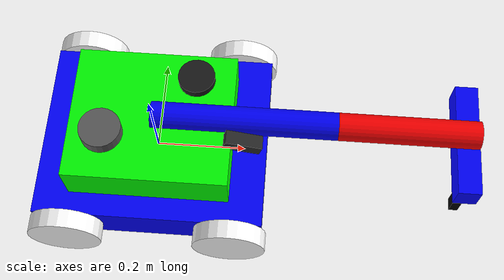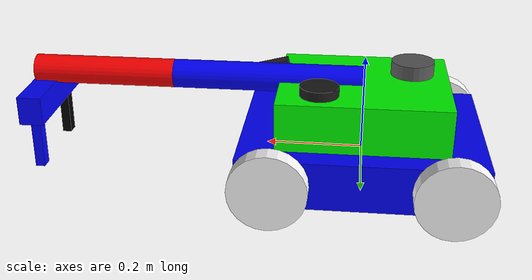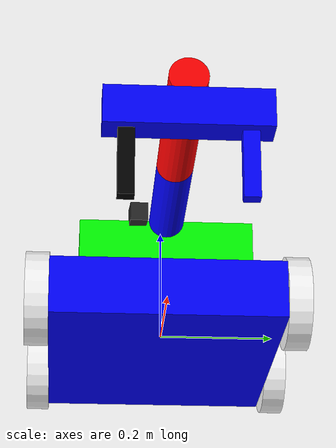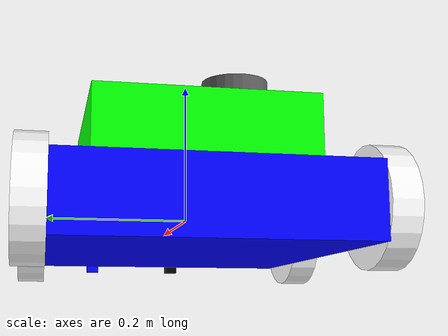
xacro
<?xml version="1.0"?>

<robot xmlns:xacro="http://www.ros.org/wiki/xacro" name="slam_robot">
  <xacro:property name="pi" value="3.14159265359"/>

  <!-- World -->

  <!-- Base -->

  <link name="base_link">

    <visual>
      <origin xyz="0 0 0" rpy="0 0 0"/>
      <geometry>
        <box size="0.5 0.4 0.1"/>
      </geometry>

      <material name="Dark Gray">
        <color rgba="0 0 1 1"/>
      </material>

    </visual>

    <collision>
      <origin xyz="0 0 0" rpy="0 0 0"/>
      <geometry>
        <box size="0.5 0.4 0.05"/>
      </geometry>
    </collision>

    <inertial>
      <origin xyz="0 0 0" rpy="0 0 0"/>
      <mass value="5"/>
      <inertia
        ixx="0.0708"
        ixy="0"
        ixz="0"
        iyy="0.1083"
        iyz="0"
        izz="0.1708"/>
    </inertial>
  </link>

  <!-- Right Front Wheel -->

  <joint name="right_front_wheel_joint" type="continuous">
    <origin xyz="0.18 -0.22 0" rpy="0 0 0"/>
    <parent link="base_link"/>
    <child link="right_front_wheel_link"/>
    <axis xyz="0 1 0"/>
  </joint>

  <link name="right_front_wheel_link">

    <visual>
      <origin xyz="0 0 0" rpy="${pi/2} 0 0"/>
      <geometry>
        <cylinder radius="0.08" length="0.04"/>
      </geometry>

      <material name="white">
        <color rgba="1 1 1 1"/>
      </material>

    </visual>

    <collision>
      <origin xyz="0 0 0" rpy="${pi/2} 0 0"/>
      <geometry>
        <cylinder radius="0.08" length="0.04"/>
      </geometry>
    </collision>

    <inertial>
      <origin xyz="0 0 0" rpy="0 0 0"/>
      <mass value="1"/>
      <inertia
        ixx="0.001733"
        ixy="0"
        ixz="0"
        iyy="0.001733"
        iyz="0"
        izz="0.0032"/>
    </inertial>

  </link>

  <!-- Left Front Wheel -->

  <joint name="left_front_wheel_joint" type="continuous">
    <origin xyz="0.18 0.22 0" rpy="0 0 0"/>
    <parent link="base_link"/>
    <child link="left_front_wheel_link"/>
    <axis xyz="0 1 0"/>
  </joint>

  <link name="left_front_wheel_link">

    <visual>
      <origin xyz="0 0 0" rpy="${pi/2} 0 0"/>
      <geometry>
        <cylinder radius="0.08" length="0.04"/>
      </geometry>

      <material name="white">
        <color rgba="1 1 1 1"/>
      </material>

    </visual>

    <collision>
      <origin xyz="0 0 0" rpy="${pi/2} 0 0"/>
      <geometry>
        <cylinder radius="0.08" length="0.04"/>
      </geometry>
    </collision>

    <inertial>
      <origin xyz="0 0 0" rpy="0 0 0"/>
      <mass value="1"/>
      <inertia
        ixx="0.001733"
        ixy="0"
        ixz="0"
        iyy="0.001733"
        iyz="0"
        izz="0.0032"/>
    </inertial>

  </link>

  <!-- Right Rear Wheel -->

  <joint name="right_back_wheel_joint" type="continuous">
    <origin xyz="-0.18 -0.22 0" rpy="0 0 0"/>
    <parent link="base_link"/>
    <child link="right_back_wheel_link"/>
    <axis xyz="0 1 0"/>
  </joint>

  <link name="right_back_wheel_link">

    <visual>
      <origin xyz="0 0 0" rpy="${pi/2} 0 0"/>
      <geometry>
        <cylinder radius="0.08" length="0.04"/>
      </geometry>

      <material name="white">
        <color rgba="1 1 1 1"/>
      </material>

    </visual>

    <collision>
      <origin xyz="0 0 0" rpy="${pi/2} 0 0"/>
      <geometry>
        <cylinder radius="0.08" length="0.04"/>
      </geometry>
    </collision>

    <inertial>
      <origin xyz="0 0 0" rpy="0 0 0"/>
      <mass value="1"/>
      <inertia
        ixx="0.001733"
        ixy="0"
        ixz="0"
        iyy="0.001733"
        iyz="0"
        izz="0.0032"/>
    </inertial>

  </link>

  <!-- Left Rear Wheel -->

  <joint name="left_back_wheel_joint" type="continuous">
    <origin xyz="-0.18 0.22 0" rpy="0 0 0"/>
    <parent link="base_link"/>
    <child link="left_back_wheel_link"/>
    <axis xyz="0 1 0"/>
  </joint>

  <link name="left_back_wheel_link">

    <visual>
      <origin xyz="0 0 0" rpy="${pi/2} 0 0"/>
      <geometry>
        <cylinder radius="0.08" length="0.04"/>
      </geometry>

      <material name="white">
        <color rgba="1 1 1 1"/>
      </material>

    </visual>

    <collision>
      <origin xyz="0 0 0" rpy="${pi/2} 0 0"/>
      <geometry>
        <cylinder radius="0.08" length="0.04"/>
      </geometry>
    </collision>

    <inertial>
      <origin xyz="0 0 0" rpy="0 0 0"/>
      <mass value="1"/>
      <inertia
        ixx="0.001733"
        ixy="0"
        ixz="0"
        iyy="0.001733"
        iyz="0"
        izz="0.0032"/>
    </inertial>

  </link>

  <!-- Sliding Joint -->
<joint name="sliding_joint" type="prismatic">
    <origin xyz="0 0 0.1" rpy="0 0 0"/>
    <parent link="base_link"/>
    <child link="sliding_link"/>

    <axis xyz="1 0 0"/>

    <limit
        lower="-0.20"
        upper="0.20"
        effort="100"
        velocity="0.2"/>
</joint>

<!-- Sliding Link -->
<link name="sliding_link">

    <visual>
        <origin xyz="0 0 0" rpy="0 0 0"/>
        <geometry>
            <box size="0.35 0.30 0.10"/>
        </geometry>

        <material name="green">
            <color rgba="0 1 0 1"/>
        </material>
    </visual>

    <collision>
        <origin xyz="0 0 0" rpy="0 0 0"/>
        <geometry>
            <box size="0.35 0.30 0.10"/>
        </geometry>
    </collision>

    <inertial>
        <origin xyz="0 0 0" rpy="0 0 0"/>
        <mass value="3"/>

        <inertia
            ixx="0.03125"
            ixy="0"
            ixz="0"
            iyy="0.03625"
            iyz="0"
            izz="0.06125"/>
    </inertial>

</link>
<joint name ="link1_joint" type ="revolute">
  <origin xyz = "0 0 0.05" rpy ="0 0 0"/>
  <parent link = "sliding_link"/>
  <child link = "link1"/>
  <axis xyz ="0 1 0"/>
  <limit lower="-1.57" upper = "0.008" effort = "100" velocity = "1"/>
</joint>
<!-- Link 1 -->
<link name="link1">

  <visual>
    <origin xyz="0.20 0 0" rpy="0 ${pi/2} 0"/>
    <geometry>
      <cylinder radius="0.03" length="0.40"/>
    </geometry>

    <material name="blue">
      <color rgba="0 0 1 1"/>
    </material>
  </visual>

  <collision>
    <origin xyz="0.20 0 0" rpy="0 ${pi/2} 0"/>
    <geometry>
      <cylinder radius="0.03" length="0.40"/>
    </geometry>
  </collision>

  <inertial>
    <origin xyz="0.20 0 0" rpy="0 0 0"/>
    <mass value="1"/>

    <inertia
      ixx="0.027"
      ixy="0"
      ixz="0"
      iyy="0.027"
      iyz="0"
      izz="0.0009"/>
  </inertial>

</link>

<!-- Revolute Joint 2 -->
<joint name="revolute2" type="revolute">

  <origin xyz="0.40 0 0" rpy="0 0 0"/>

  <parent link="link1"/>
  <child link="link2"/>

  <axis xyz="0 1 0"/>

  <limit
      lower="-0.059"
      upper="1.57"
      effort="100"
      velocity="1"/>

</joint>

<!-- Link 2 -->
<link name="link2">

  <visual>
    <origin xyz="0.15 0 0" rpy="0 ${pi/2} 0"/>
    <geometry>
      <cylinder radius="0.03" length="0.30"/>
    </geometry>

    <material name="Blue">
      <color rgba="1 0 0 1"/>
    </material>
  </visual>

  <collision>
    <origin xyz="0.15 0 0" rpy="0 ${pi/2} 0"/>
    <geometry>
      <cylinder radius="0.03" length="0.30"/>
    </geometry>
  </collision>

  <inertial>
    <origin xyz="0.15 0 0" rpy="0 0 0"/>
    <mass value="1"/>

    <inertia
      ixx="0.0115"
      ixy="0"
      ixz="0"
      iyy="0.0115"
      iyz="0"
      izz="0.000675"/>
  </inertial>

</link>
<!--wrist_joint_for_ee-->
<joint name = "wrist_joint" type = "revolute">
<origin xyz="0.28 0 0" rpy = "0 0 0"/>
<parent link ="link2"/>
<child link  = "wrist"/>
<axis xyz = "0 1 0"/>
<limit lower = "-1.57" upper="0.028" effort="100" velocity = "0.5"/>
</joint>
<!--vertical_link-->
<link name = "wrist">
   <visual>
      <origin xyz = "0 0 -0.05" rpy = "0 0 0 "/>
      <geometry>
        <box size = "0.05  0.25  0.06"/>
      </geometry>
      <material name ="black">
        <color rgba = "0 0 1 1"/>
      </material>
    </visual>
    <collision>
      <origin xyz = " 0 0 -0.05" rpy = "0 0 0"/>
      <geometry>
          <box size = "0.06  0.10  0.06"/>
      </geometry>
    </collision>
    <inertial>
      <origin xyz ="0 0 -0.05" rpy =" 0 0 0 "/>
      <mass value = "1"/>
      <inertia
        ixx="0.000454"
        ixy="0"
        ixz="0"
        iyy="0.000454"
        iyz="0"
        izz="0.000075"/>
    </inertial>
</link>
<!--finger joint-->
<joint name = "left_finger_joint" type = "prismatic">
<origin xyz="0 0.09 -0.05" rpy="0 0 0"/>
<parent link= "wrist"/>
<child link = "left_finger"/>
<axis xyz = "0 1 0"/>
<limit lower="0" upper="0.030" effort="100" velocity="1"/>
</joint>
<link name = "left_finger">
  <visual>
    <origin xyz="0 0 -0.06" rpy="0 0 0"/>
    <geometry>
      <box size = "0.020 0.025 0.15"/>
    </geometry>
    <material name="black">
      <color rgba = "0 0 1 1"/>
    </material>
  </visual>
  <collision>
    <origin xyz="0 0 -0.045" rpy="0 0 0"/>
    <geometry>
      <box size = "0.020 0.025 0.15"/>
    </geometry>
  </collision>
  <inertial>
     <origin xyz="0 0 -0.045" rpy="0 0 0"/>
     <mass value ="0.2"/>
     <inertia
        ixx="0.0001104"
        ixy="0"
        ixz="0"
        iyy="0.0001104"
        iyz="0"
        izz="0.0000075"/>
  </inertial>
</link>
<joint name = "right_finger_joint" type ="prismatic">
<origin xyz="0 -0.09 -0.05" rpy="0 0 0"/>
<parent link = "wrist"/>
<child link ="right_link"/>
<axis xyz="0 -1 0"/>
<limit lower="0" upper="0.030" effort="50" velocity="1"/>
</joint>
<link name="right_link">

    <visual>
        <origin xyz="0 0 -0.06" rpy="0 0 0"/>
        <geometry>
            <box size="0.020 0.025 0.15"/>
        </geometry>

        <material name="black">
            <color rgba="0 0 0 1"/>
        </material>
    </visual>

    <collision>
        <origin xyz="0 0 -0.06" rpy="0 0 0"/>
        <geometry>
            <box size="0.020 0.025 0.15"/>
        </geometry>
    </collision>

    <inertial>
        <origin xyz="0 0 -0.06" rpy="0 0 0"/>

        <mass value="0.2"/>

        <inertia
            ixx="0.0001104"
            ixy="0"
            ixz="0"
            iyy="0.0001104"
            iyz="0"
            izz="0.0000075"/>
    </inertial>
</link>
<!--lidar_joint-->
<joint name="lidar_joint" type="fixed">
    <parent link="sliding_link"/>
    <child link="lidar_link"/>
    <origin xyz="0 0 0.05" rpy="0 0 0"/>
</joint>
<link name="lidar_link">

    <visual>
        <origin xyz="0.09 0.09 0" rpy="0 0 0"/>
        <geometry>
            <cylinder radius="0.04" length="0.04"/>
        </geometry>

        <material name="Sliver">
            <color rgba="0.1 0.1 0.1 1"/>
        </material>
    </visual>

    <collision>
        <origin xyz="0.09 0.09 0.05" rpy="0 0 0"/>
        <geometry>
            <cylinder radius="0.04" length="0.04"/>
        </geometry>
    </collision>

    <inertial>
        <origin xyz="0.09 0.09 0.05" rpy="0 0 0"/>

        <mass value="0.3"/>

        <inertia
            ixx="0.00026"
            ixy="0"
            ixz="0"
            iyy="0.00026"
            iyz="0"
            izz="0.00024"/>
    </inertial>

</link>
<joint name="camera_joint" type="fixed">
    <parent link="sliding_link"/>
    <child link="camera_link"/>
    <origin xyz="0.20 -0.05 0.05" rpy = " 0 0 0" />
</joint>
<link name="camera_link">

    <!-- Visual -->
    <visual>
        <origin xyz="0 0 0" rpy="0 0.25 0"/>
        <geometry>
            <box size="0.08 0.03 0.03"/>
        </geometry>
        <material name="camera_black">
            <color rgba="0.15 0.15 0.15 1"/>
        </material>
    </visual>

    <!-- Collision -->
    <collision>
        <origin xyz="0 0 0" rpy="0 0 0"/>
        <geometry>
            <box size="0.08 0.03 0.03"/>
        </geometry>
    </collision>
   <inertial>
    <origin xyz="0 0 0" rpy="0 0 0"/>
    <mass value="0.25"/>
    <inertia
        ixx="0.0002"
        ixy="0"
        ixz="0"
        iyy="0.0002"
        iyz="0"
        izz="0.0002"/>
</inertial>
</link>
<joint name = "imu" type = "fixed">
<origin xyz = "-0.10 -0.05 0.05" rpy = "0 0 0"/>
<parent link = "sliding_link"/>
<child link  = "imu_link"/>
</joint>
<link name = "imu_link">
  <visual>
    <origin xyz = "0 0 0" rpy = " 0 0 0 "/>
    <geometry>
      <cylinder length="0.06" radius="0.045"/>
    </geometry>
    <material name="steel">
      <color rgba="0.35 0.35 0.35 1"/>
    </material>
  </visual>
  <collision>
     <origin xyz = "0 0 0" rpy = " 0 0 0 "/>
    <geometry>
      <cylinder length="0.06" radius="0.045"/>
    </geometry>
  </collision>
  <inertial>
    <origin xyz ="0 0 0" rpy = " 0 0 0"/>
    <mass value = "0.20"/>
    <inertia
     ixx="0.000073"
      ixy="0.0"
      ixz="0.0"
      iyy="0.000073"
      iyz="0.0"
      izz="0.000063"/>
  </inertial>
</link>
<!--camera _sensor-->
<gazebo reference="camera_link">

  <sensor name="camera_sensor" type="camera">

    <update_rate>30</update_rate>

    <camera>

      <horizontal_fov>1.047</horizontal_fov>

      <image>
        <width>640</width>
        <height>480</height>
        <format>R8G8B8</format>
      </image>

      <clip>
        <near>0.1</near>
        <far>100</far>
      </clip>

    </camera>

    <visualize>true</visualize>

  </sensor>

</gazebo>
<!-- ======================= LIDAR ======================= -->
<gazebo reference="lidar_link">
  <sensor name="lidar_sensor" type="gpu_lidar">
    <always_on>true</always_on>
    <update_rate>20</update_rate>
    <visualize>true</visualize>
    <topic>/scan</topic>
    <frame_id>lidar_link</frame_id>
    <gz_frame_id>lidar_link</gz_frame_id>
    <lidar>
      <scan>
        <horizontal>
          <samples>720</samples>
          <resolution>1</resolution>
          <min_angle>-3.14159</min_angle>
          <max_angle>3.14159</max_angle>
        </horizontal>
      </scan>
      <range>
        <min>0.15</min>
        <max>15.0</max>
        <resolution>0.01</resolution>
      </range>
      <noise>
        <type>gaussian</type>
        <mean>0.0</mean>
        <stddev>0.005</stddev>
      </noise>
    </lidar>
  </sensor>
</gazebo>

<!-- ========================= IMU ========================= -->
<gazebo reference="imu_link">
  <sensor name="imu_sensor" type="imu">
    <always_on>true</always_on>
    <update_rate>100</update_rate>
    <topic>imu</topic>
    <imu>
      <angular_velocity>
        <x>
          <noise type="gaussian">
            <mean>0.0</mean>
            <stddev>0.0002</stddev>
          </noise>
        </x>
        <y>
          <noise type="gaussian">
            <mean>0.0</mean>
            <stddev>0.0002</stddev>
          </noise>
        </y>
        <z>
          <noise type="gaussian">
            <mean>0.0</mean>
            <stddev>0.0002</stddev>
          </noise>
        </z>
      </angular_velocity>
      <linear_acceleration>
        <x>
          <noise type="gaussian">
            <mean>0.0</mean>
            <stddev>0.017</stddev>
          </noise>
        </x>
        <y>
          <noise type="gaussian">
            <mean>0.0</mean>
            <stddev>0.017</stddev>
          </noise>
        </y>
        <z>
          <noise type="gaussian">
            <mean>0.0</mean>
            <stddev>0.017</stddev>
          </noise>
        </z>
      </linear_acceleration>
    </imu>
    <plugin filename="gz-sim-imu-system" name="gz::sim::systems::Imu"/>
  </sensor>
</gazebo>
<gazebo>
  <plugin filename="gz-sim-diff-drive-system" name="gz::sim::systems::DiffDrive">
    <left_joint>left_front_wheel_joint</left_joint>
    <left_joint>left_back_wheel_joint</left_joint>
    <right_joint>right_front_wheel_joint</right_joint>
    <right_joint>right_back_wheel_joint</right_joint>
    <wheel_separation>0.44</wheel_separation>
    <wheel_radius>0.08</wheel_radius>
    <topic>cmd_vel</topic>
    <odom_topic>odom</odom_topic>
    <frame_id>odom</frame_id>
    <child_frame_id>base_link</child_frame_id>
    <tf_topic>tf</tf_topic>
  </plugin>
</gazebo>
<gazebo>
  <plugin filename="gz-sim-joint-position-controller-system" name="gz::sim::systems::JointPositionController">
    <joint_name>sliding_joint</joint_name>
    <p_gain>50</p_gain>
    <i_gain>0</i_gain>
    <d_gain>5</d_gain>
    <topic>sliding_joint_cmd</topic>
  </plugin>
</gazebo>

<gazebo>
  <plugin filename="gz-sim-joint-position-controller-system" name="gz::sim::systems::JointPositionController">
    <joint_name>link1_joint</joint_name>
    <p_gain>50</p_gain>
    <i_gain>0</i_gain>
    <d_gain>5</d_gain>
    <topic>link1_joint_cmd</topic>
  </plugin>
</gazebo>

<gazebo>
  <plugin filename="gz-sim-joint-position-controller-system" name="gz::sim::systems::JointPositionController">
    <joint_name>revolute2</joint_name>
    <p_gain>50</p_gain>
    <i_gain>0</i_gain>
    <d_gain>5</d_gain>
    <topic>revolute2_cmd</topic>
  </plugin>
</gazebo>

<gazebo>
  <plugin filename="gz-sim-joint-position-controller-system" name="gz::sim::systems::JointPositionController">
    <joint_name>wrist_joint</joint_name>
    <p_gain>50</p_gain>
    <i_gain>0</i_gain>
    <d_gain>5</d_gain>
    <topic>wrist_joint_cmd</topic>
  </plugin>
</gazebo>
<gazebo>
  <plugin filename="gz-sim-joint-state-publisher-system" name="gz::sim::systems::JointStatePublisher">
  </plugin>
</gazebo>
</robot>
